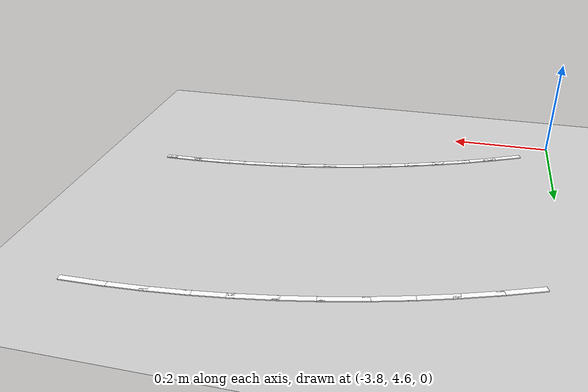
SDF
<sdf version="1.7">
 <world name="default">
  <model name="ground_plane">
   <static>1</static>
   <link name="link">
    <collision name="collision">
     <geometry><plane><normal>0 0 1</normal><size>100 100</size></plane></geometry>
     <surface>
      <contact><collide_bitmask>65535</collide_bitmask></contact>
      <friction><ode><mu>100</mu><mu2>50</mu2></ode></friction>
     </surface>
    </collision>
    <visual name="visual">
     <cast_shadows>0</cast_shadows>
     <geometry><plane><normal>0 0 1</normal><size>100 100</size></plane></geometry>
     <material>
      <script><uri>file://media/materials/scripts/gazebo.material</uri><name>Gazebo/Grey</name></script>
     </material>
    </visual>
   </link>
  </model>
  <model name="lane_line_right_249">
   <static>1</static>
   <link name="link">
    <pose>0 0 -0.004 0 -0 0</pose>
    <visual name="visual">
     <geometry><box><size>0.02 0.01 0.01</size></box></geometry>
     <material><ambient>1 1 1 1</ambient><diffuse>1 1 1 1</diffuse></material>
    </visual>
    <collision name="collision"><geometry><box><size>0.02 0.01 0.01</size></box></geometry></collision>
   </link>
   <pose>-3 4.8 0 0 -0 0</pose>
  </model>
  <model name="lane_line_left_250">
   <static>1</static>
   <link name="link">
    <pose>0 0 -0.004 0 -0 0</pose>
    <visual name="visual">
     <geometry><box><size>0.0841 0.01 0.01</size></box></geometry>
     <material><ambient>1 1 1 1</ambient><diffuse>1 1 1 1</diffuse></material>
    </visual>
    <collision name="collision"><geometry><box><size>0.0841 0.01 0.01</size></box></geometry></collision>
   </link>
   <pose>-3.02885 4.79951 0 0 0 -3.12556</pose>
  </model>
  <model name="lane_line_right_250">
   <static>1</static>
   <link name="link">
    <pose>0 0 -0.004 0 -0 0</pose>
    <visual name="visual">
     <geometry><box><size>0.0841 0.01 0.01</size></box></geometry>
     <material><ambient>1 1 1 1</ambient><diffuse>1 1 1 1</diffuse></material>
    </visual>
    <collision name="collision"><geometry><box><size>0.0841 0.01 0.01</size></box></geometry></collision>
   </link>
   <pose>-3.03526 5.19946 0 0 0 -3.12556</pose>
  </model>
  <model name="lane_line_left_251">
   <static>1</static>
   <link name="link">
    <pose>0 0 -0.004 0 -0 0</pose>
    <visual name="visual">
     <geometry><box><size>0.0841 0.01 0.01</size></box></geometry>
     <material><ambient>1 1 1 1</ambient><diffuse>1 1 1 1</diffuse></material>
    </visual>
    <collision name="collision"><geometry><box><size>0.0841 0.01 0.01</size></box></geometry></collision>
   </link>
   <pose>-3.08651 4.79766 0 0 0 -3.09351</pose>
  </model>
  <model name="lane_line_right_251">
   <static>1</static>
   <link name="link">
    <pose>0 0 -0.004 0 -0 0</pose>
    <visual name="visual">
     <geometry><box><size>0.0841 0.01 0.01</size></box></geometry>
     <material><ambient>1 1 1 1</ambient><diffuse>1 1 1 1</diffuse></material>
    </visual>
    <collision name="collision"><geometry><box><size>0.0841 0.01 0.01</size></box></geometry></collision>
   </link>
   <pose>-3.10574 5.1972 0 0 0 -3.09351</pose>
  </model>
  <model name="lane_line_left_252">
   <static>1</static>
   <link name="link">
    <pose>0 0 -0.004 0 -0 0</pose>
    <visual name="visual">
     <geometry><box><size>0.0841 0.01 0.01</size></box></geometry>
     <material><ambient>1 1 1 1</ambient><diffuse>1 1 1 1</diffuse></material>
    </visual>
    <collision name="collision"><geometry><box><size>0.0841 0.01 0.01</size></box></geometry></collision>
   </link>
   <pose>-3.14408 4.79397 0 0 0 -3.06145</pose>
  </model>
  <model name="lane_line_right_252">
   <static>1</static>
   <link name="link">
    <pose>0 0 -0.004 0 -0 0</pose>
    <visual name="visual">
     <geometry><box><size>0.0841 0.01 0.01</size></box></geometry>
     <material><ambient>1 1 1 1</ambient><diffuse>1 1 1 1</diffuse></material>
    </visual>
    <collision name="collision"><geometry><box><size>0.0841 0.01 0.01</size></box></geometry></collision>
   </link>
   <pose>-3.1761 5.19268 0 0 0 -3.06145</pose>
  </model>
  <model name="lane_line_left_253">
   <static>1</static>
   <link name="link">
    <pose>0 0 -0.004 0 -0 0</pose>
    <visual name="visual">
     <geometry><box><size>0.0841 0.01 0.01</size></box></geometry>
     <material><ambient>1 1 1 1</ambient><diffuse>1 1 1 1</diffuse></material>
    </visual>
    <collision name="collision"><geometry><box><size>0.0841 0.01 0.01</size></box></geometry></collision>
   </link>
   <pose>-3.20151 4.78843 0 0 0 -3.02939</pose>
  </model>
  <model name="lane_line_right_253">
   <static>1</static>
   <link name="link">
    <pose>0 0 -0.004 0 -0 0</pose>
    <visual name="visual">
     <geometry><box><size>0.0841 0.01 0.01</size></box></geometry>
     <material><ambient>1 1 1 1</ambient><diffuse>1 1 1 1</diffuse></material>
    </visual>
    <collision name="collision"><geometry><box><size>0.0841 0.01 0.01</size></box></geometry></collision>
   </link>
   <pose>-3.24629 5.18591 0 0 0 -3.02939</pose>
  </model>
  <model name="lane_line_left_254">
   <static>1</static>
   <link name="link">
    <pose>0 0 -0.004 0 -0 0</pose>
    <visual name="visual">
     <geometry><box><size>0.0841 0.01 0.01</size></box></geometry>
     <material><ambient>1 1 1 1</ambient><diffuse>1 1 1 1</diffuse></material>
    </visual>
    <collision name="collision"><geometry><box><size>0.0841 0.01 0.01</size></box></geometry></collision>
   </link>
   <pose>-3.25873 4.78105 0 0 0 -2.99734</pose>
  </model>
  <model name="lane_line_right_254">
   <static>1</static>
   <link name="link">
    <pose>0 0 -0.004 0 -0 0</pose>
    <visual name="visual">
     <geometry><box><size>0.0841 0.01 0.01</size></box></geometry>
     <material><ambient>1 1 1 1</ambient><diffuse>1 1 1 1</diffuse></material>
    </visual>
    <collision name="collision"><geometry><box><size>0.0841 0.01 0.01</size></box></geometry></collision>
   </link>
   <pose>-3.31623 5.17689 0 0 0 -2.99734</pose>
  </model>
  <model name="lane_line_left_255">
   <static>1</static>
   <link name="link">
    <pose>0 0 -0.004 0 -0 0</pose>
    <visual name="visual">
     <geometry><box><size>0.0841 0.01 0.01</size></box></geometry>
     <material><ambient>1 1 1 1</ambient><diffuse>1 1 1 1</diffuse></material>
    </visual>
    <collision name="collision"><geometry><box><size>0.0841 0.01 0.01</size></box></geometry></collision>
   </link>
   <pose>-3.31568 4.77184 0 0 0 -2.96528</pose>
  </model>
  <model name="lane_line_right_255">
   <static>1</static>
   <link name="link">
    <pose>0 0 -0.004 0 -0 0</pose>
    <visual name="visual">
     <geometry><box><size>0.0841 0.01 0.01</size></box></geometry>
     <material><ambient>1 1 1 1</ambient><diffuse>1 1 1 1</diffuse></material>
    </visual>
    <collision name="collision"><geometry><box><size>0.0841 0.01 0.01</size></box></geometry></collision>
   </link>
   <pose>-3.38584 5.16564 0 0 0 -2.96528</pose>
  </model>
  <model name="lane_line_left_256">
   <static>1</static>
   <link name="link">
    <pose>0 0 -0.004 0 -0 0</pose>
    <visual name="visual">
     <geometry><box><size>0.0841 0.01 0.01</size></box></geometry>
     <material><ambient>1 1 1 1</ambient><diffuse>1 1 1 1</diffuse></material>
    </visual>
    <collision name="collision"><geometry><box><size>0.0841 0.01 0.01</size></box></geometry></collision>
   </link>
   <pose>-3.37231 4.76081 0 0 0 -2.93322</pose>
  </model>
  <model name="lane_line_right_256">
   <static>1</static>
   <link name="link">
    <pose>0 0 -0.004 0 -0 0</pose>
    <visual name="visual">
     <geometry><box><size>0.0841 0.01 0.01</size></box></geometry>
     <material><ambient>1 1 1 1</ambient><diffuse>1 1 1 1</diffuse></material>
    </visual>
    <collision name="collision"><geometry><box><size>0.0841 0.01 0.01</size></box></geometry></collision>
   </link>
   <pose>-3.45505 5.15216 0 0 0 -2.93322</pose>
  </model>
  <model name="lane_line_left_257">
   <static>1</static>
   <link name="link">
    <pose>0 0 -0.004 0 -0 0</pose>
    <visual name="visual">
     <geometry><box><size>0.0841 0.01 0.01</size></box></geometry>
     <material><ambient>1 1 1 1</ambient><diffuse>1 1 1 1</diffuse></material>
    </visual>
    <collision name="collision"><geometry><box><size>0.0841 0.01 0.01</size></box></geometry></collision>
   </link>
   <pose>-3.42855 4.74798 0 0 0 -2.90116</pose>
  </model>
  <model name="lane_line_right_257">
   <static>1</static>
   <link name="link">
    <pose>0 0 -0.004 0 -0 0</pose>
    <visual name="visual">
     <geometry><box><size>0.0841 0.01 0.01</size></box></geometry>
     <material><ambient>1 1 1 1</ambient><diffuse>1 1 1 1</diffuse></material>
    </visual>
    <collision name="collision"><geometry><box><size>0.0841 0.01 0.01</size></box></geometry></collision>
   </link>
   <pose>-3.5238 5.13647 0 0 0 -2.90116</pose>
  </model>
  <model name="lane_line_left_258">
   <static>1</static>
   <link name="link">
    <pose>0 0 -0.004 0 -0 0</pose>
    <visual name="visual">
     <geometry><box><size>0.0841 0.01 0.01</size></box></geometry>
     <material><ambient>1 1 1 1</ambient><diffuse>1 1 1 1</diffuse></material>
    </visual>
    <collision name="collision"><geometry><box><size>0.0841 0.01 0.01</size></box></geometry></collision>
   </link>
   <pose>-3.48436 4.73334 0 0 0 -2.86911</pose>
  </model>
  <model name="lane_line_right_258">
   <static>1</static>
   <link name="link">
    <pose>0 0 -0.004 0 -0 0</pose>
    <visual name="visual">
     <geometry><box><size>0.0841 0.01 0.01</size></box></geometry>
     <material><ambient>1 1 1 1</ambient><diffuse>1 1 1 1</diffuse></material>
    </visual>
    <collision name="collision"><geometry><box><size>0.0841 0.01 0.01</size></box></geometry></collision>
   </link>
   <pose>-3.59201 5.11858 0 0 0 -2.86911</pose>
  </model>
  <model name="lane_line_left_259">
   <static>1</static>
   <link name="link">
    <pose>0 0 -0.004 0 -0 0</pose>
    <visual name="visual">
     <geometry><box><size>0.0841 0.01 0.01</size></box></geometry>
     <material><ambient>1 1 1 1</ambient><diffuse>1 1 1 1</diffuse></material>
    </visual>
    <collision name="collision"><geometry><box><size>0.0841 0.01 0.01</size></box></geometry></collision>
   </link>
   <pose>-3.53966 4.71693 0 0 0 -2.83705</pose>
  </model>
  <model name="lane_line_right_259">
   <static>1</static>
   <link name="link">
    <pose>0 0 -0.004 0 -0 0</pose>
    <visual name="visual">
     <geometry><box><size>0.0841 0.01 0.01</size></box></geometry>
     <material><ambient>1 1 1 1</ambient><diffuse>1 1 1 1</diffuse></material>
    </visual>
    <collision name="collision"><geometry><box><size>0.0841 0.01 0.01</size></box></geometry></collision>
   </link>
   <pose>-3.65961 5.09852 0 0 0 -2.83705</pose>
  </model>
  <model name="lane_line_left_260">
   <static>1</static>
   <link name="link">
    <pose>0 0 -0.004 0 -0 0</pose>
    <visual name="visual">
     <geometry><box><size>0.0841 0.01 0.01</size></box></geometry>
     <material><ambient>1 1 1 1</ambient><diffuse>1 1 1 1</diffuse></material>
    </visual>
    <collision name="collision"><geometry><box><size>0.0841 0.01 0.01</size></box></geometry></collision>
   </link>
   <pose>-3.59442 4.69875 0 0 0 -2.80499</pose>
  </model>
  <model name="lane_line_right_260">
   <static>1</static>
   <link name="link">
    <pose>0 0 -0.004 0 -0 0</pose>
    <visual name="visual">
     <geometry><box><size>0.0841 0.01 0.01</size></box></geometry>
     <material><ambient>1 1 1 1</ambient><diffuse>1 1 1 1</diffuse></material>
    </visual>
    <collision name="collision"><geometry><box><size>0.0841 0.01 0.01</size></box></geometry></collision>
   </link>
   <pose>-3.72653 5.0763 0 0 0 -2.80499</pose>
  </model>
  <model name="lane_line_left_261">
   <static>1</static>
   <link name="link">
    <pose>0 0 -0.004 0 -0 0</pose>
    <visual name="visual">
     <geometry><box><size>0.0841 0.01 0.01</size></box></geometry>
     <material><ambient>1 1 1 1</ambient><diffuse>1 1 1 1</diffuse></material>
    </visual>
    <collision name="collision"><geometry><box><size>0.0841 0.01 0.01</size></box></geometry></collision>
   </link>
   <pose>-3.64856 4.67882 0 0 0 -2.77294</pose>
  </model>
  <model name="lane_line_left_262">
   <static>1</static>
   <link name="link">
    <pose>0 0 -0.004 0 -0 0</pose>
    <visual name="visual">
     <geometry><box><size>0.0841 0.01 0.01</size></box></geometry>
     <material><ambient>1 1 1 1</ambient><diffuse>1 1 1 1</diffuse></material>
    </visual>
    <collision name="collision"><geometry><box><size>0.0841 0.01 0.01</size></box></geometry></collision>
   </link>
   <pose>-3.70204 4.65717 0 0 0 -2.74088</pose>
  </model>
 </world>
</sdf>
